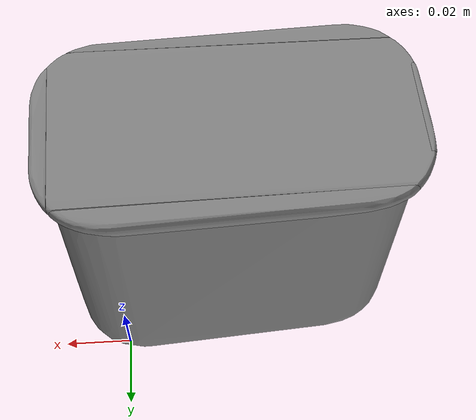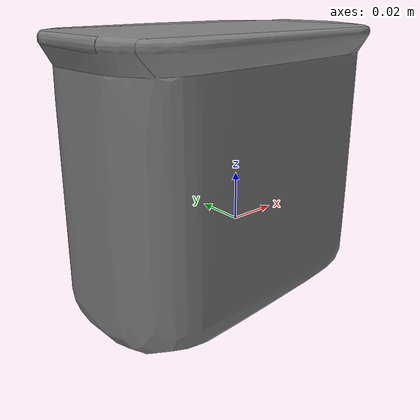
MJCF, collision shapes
<mujoco model="ycb_010_potted_meat_can">
  <compiler meshdir="meshes" texturedir="meshes" angle="radian"/>
  <default>
    <default class="visual"><geom contype="0" conaffinity="0" group="2" density="0"/></default>
    <default class="collision"><geom group="3"/></default>
  </default>
  <asset>
    <texture name="ycb_010_potted_meat_can_tex" type="2d" file="ycb_010_potted_meat_can_texture.png"/>
    <material name="ycb_010_potted_meat_can_mat" texture="ycb_010_potted_meat_can_tex" specular="0.2" shininess="0.3"/>
    <mesh name="ycb_010_potted_meat_can_visual" file="ycb_010_potted_meat_can_visual.obj"/>
    <mesh name="ycb_010_potted_meat_can_hull0" file="ycb_010_potted_meat_can_hull0.obj"/>
    <mesh name="ycb_010_potted_meat_can_hull1" file="ycb_010_potted_meat_can_hull1.obj"/>
    <mesh name="ycb_010_potted_meat_can_hull2" file="ycb_010_potted_meat_can_hull2.obj"/>
    <mesh name="ycb_010_potted_meat_can_hull3" file="ycb_010_potted_meat_can_hull3.obj"/>
    <mesh name="ycb_010_potted_meat_can_hull4" file="ycb_010_potted_meat_can_hull4.obj"/>
    <mesh name="ycb_010_potted_meat_can_hull5" file="ycb_010_potted_meat_can_hull5.obj"/>
    <mesh name="ycb_010_potted_meat_can_hull6" file="ycb_010_potted_meat_can_hull6.obj"/>
    <mesh name="ycb_010_potted_meat_can_hull7" file="ycb_010_potted_meat_can_hull7.obj"/>
  </asset>
  <worldbody>
    <body name="object" pos="0 0 0">
      <freejoint name="object_free"/>
      <geom type="mesh" mesh="ycb_010_potted_meat_can_visual" material="ycb_010_potted_meat_can_mat" class="visual"/>
      <geom type="mesh" mesh="ycb_010_potted_meat_can_hull0" class="collision"/>
      <geom type="mesh" mesh="ycb_010_potted_meat_can_hull1" class="collision"/>
      <geom type="mesh" mesh="ycb_010_potted_meat_can_hull2" class="collision"/>
      <geom type="mesh" mesh="ycb_010_potted_meat_can_hull3" class="collision"/>
      <geom type="mesh" mesh="ycb_010_potted_meat_can_hull4" class="collision"/>
      <geom type="mesh" mesh="ycb_010_potted_meat_can_hull5" class="collision"/>
      <geom type="mesh" mesh="ycb_010_potted_meat_can_hull6" class="collision"/>
      <geom type="mesh" mesh="ycb_010_potted_meat_can_hull7" class="collision"/>
    </body>
  </worldbody>
</mujoco>
